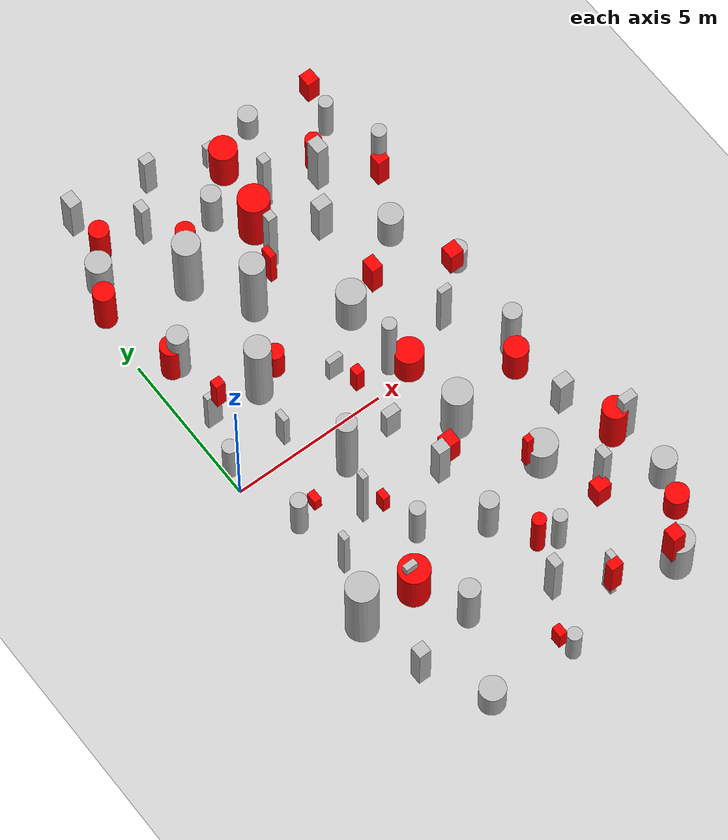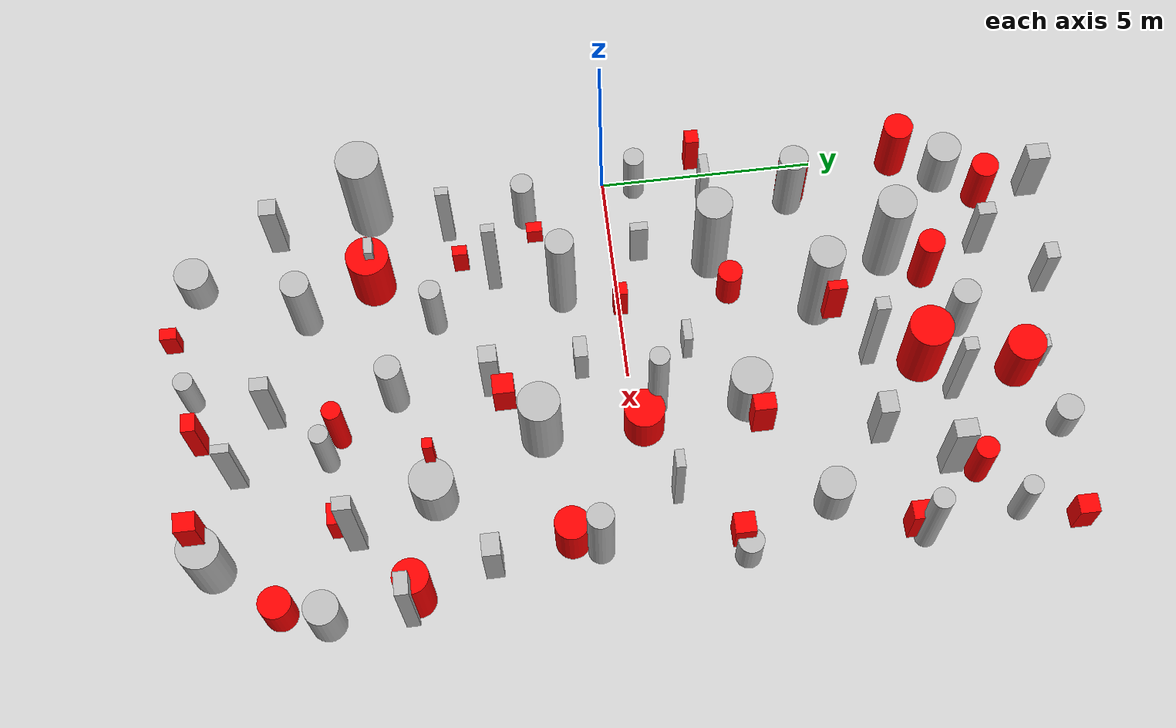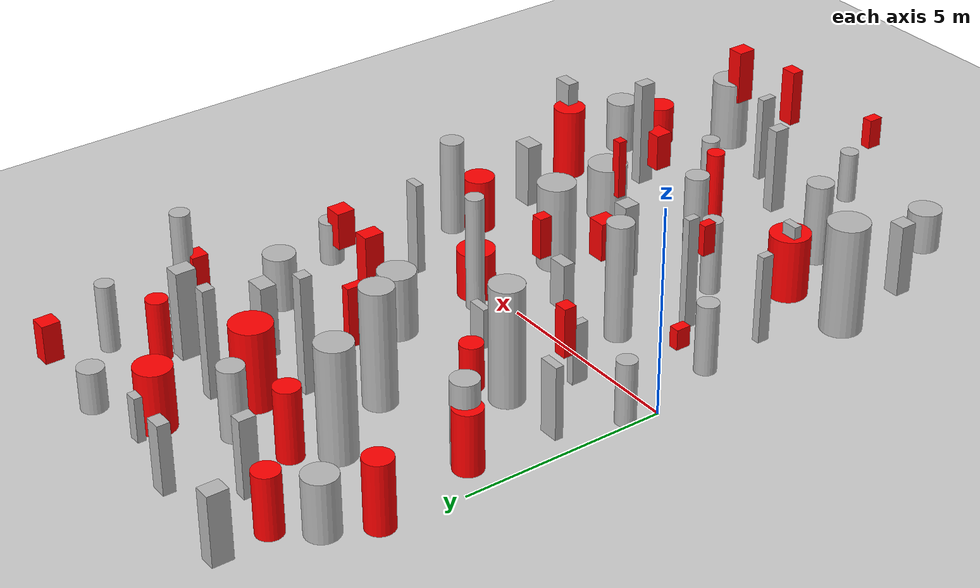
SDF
<sdf version="1.7">
 <world name="default">
  <model name="ground_plane">
   <static>1</static>
   <link name="link">
    <collision name="collision">
     <geometry><plane><normal>0 0 1</normal><size>100 100</size></plane></geometry>
     <surface>
      <contact><collide_bitmask>65535</collide_bitmask></contact>
      <friction><ode><mu>100</mu><mu2>50</mu2></ode></friction>
     </surface>
    </collision>
    <visual name="visual">
     <cast_shadows>0</cast_shadows>
     <geometry><plane><normal>0 0 1</normal><size>100 100</size></plane></geometry>
     <material>
      <script><uri>file://media/materials/scripts/gazebo.material</uri><name>Gazebo/Grey</name></script>
     </material>
    </visual>
   </link>
  </model>
  <model name="cylinder_0_0.7_0.7_2.1">
   <static>true</static>
   <pose>0.9762700785464951 4.30378732744839 1.0448831829968968 0 0 0</pose>
   <link name="link">
    <visual name="visual">
     <geometry>
      <cylinder><radius>0.3270964398016714</radius><length>2.0897663659937935</length></cylinder>
     </geometry>
    </visual>
    <collision name="collision">
     <geometry>
      <cylinder><radius>0.3270964398016714</radius><length>2.0897663659937935</length></cylinder>
     </geometry>
     <collision><collide_bitmask>0x1</collide_bitmask><collide_with>0x2</collide_with></collision>
    </collision>
   </link>
  </model>
  <model name="cylinder_1_0.6_0.6_2.9">
   <static>true</static>
   <pose>2.917882261333123 -1.2482557747461502 1.4636627605010293 0 0 0</pose>
   <link name="link">
    <visual name="visual">
     <geometry>
      <cylinder><radius>0.3150324556477333</radius><length>2.9273255210020586</length></cylinder>
     </geometry>
    </visual>
    <collision name="collision">
     <geometry>
      <cylinder><radius>0.3150324556477333</radius><length>2.9273255210020586</length></cylinder>
     </geometry>
     <collision><collide_bitmask>0x1</collide_bitmask><collide_with>0x2</collide_with></collision>
    </collision>
   </link>
  </model>
  <model name="cylinder_2_0.4_0.4_2.9">
   <static>true</static>
   <pose>5.834500761653292 0.5778983950580887 1.425596638292661 0 0 0</pose>
   <link name="link">
    <visual name="visual">
     <geometry>
      <cylinder><radius>0.2213108174593661</radius><length>2.851193276585322</length></cylinder>
     </geometry>
    </visual>
    <collision name="collision">
     <geometry>
      <cylinder><radius>0.2213108174593661</radius><length>2.851193276585322</length></cylinder>
     </geometry>
     <collision><collide_bitmask>0x1</collide_bitmask><collide_with>0x2</collide_with></collision>
    </collision>
   </link>
  </model>
  <model name="cylinder_4_0.5_0.5_2.6">
   <static>true</static>
   <pose>9.572366844655281 5.983171284334471 1.2805291762864555 0 0 0</pose>
   <link name="link">
    <visual name="visual">
     <geometry>
      <cylinder><radius>0.23548232776067998</radius><length>2.561058352572911</length></cylinder>
     </geometry>
    </visual>
    <collision name="collision">
     <geometry>
      <cylinder><radius>0.23548232776067998</radius><length>2.561058352572911</length></cylinder>
     </geometry>
     <collision><collide_bitmask>0x1</collide_bitmask><collide_with>0x2</collide_with></collision>
    </collision>
   </link>
  </model>
  <model name="cylinder_5_0.6_0.6_2.0">
   <static>true</static>
   <pose>2.798420426550477 -7.132934251819072 1.0218483217500718 0 0 0</pose>
   <link name="link">
    <visual name="visual">
     <geometry>
      <cylinder><radius>0.3243985819971571</radius><length>2.0436966435001436</length></cylinder>
     </geometry>
    </visual>
   </link>
  </model>
  <model name="cylinder_7_0.8_0.8_2.9">
   <static>true</static>
   <pose>2.352709941517542 2.2419144544484286 1.4437480785146242 0 0 0</pose>
   <link name="link">
    <visual name="visual">
     <geometry>
      <cylinder><radius>0.404546089731045</radius><length>2.8874961570292483</length></cylinder>
     </geometry>
    </visual>
   </link>
  </model>
  <model name="cylinder_12_0.6_0.6_1.1">
   <static>true</static>
   <pose>9.535221763806742 2.0969103949009202 0.5391877922543207 0 0 0</pose>
   <link name="link">
    <visual name="visual">
     <geometry>
      <cylinder><radius>0.2848420887729229</radius><length>1.0783755845086413</length></cylinder>
     </geometry>
    </visual>
   </link>
  </model>
  <model name="cylinder_16_0.8_0.8_1.0">
   <static>true</static>
   <pose>1.7302586962016626 -9.597849076250128 0.5046954761925471 0 0 0</pose>
   <link name="link">
    <visual name="visual">
     <geometry>
      <cylinder><radius>0.4033449610388691</radius><length>1.0093909523850941</length></cylinder>
     </geometry>
    </visual>
   </link>
  </model>
  <model name="cylinder_17_0.6_0.6_2.4">
   <static>true</static>
   <pose>9.054980230339702 -1.0574924276474533 1.1994792753175043 0 0 0</pose>
   <link name="link">
    <visual name="visual">
     <geometry>
      <cylinder><radius>0.2892310852565401</radius><length>2.3989585506350086</length></cylinder>
     </geometry>
    </visual>
   </link>
  </model>
  <model name="cylinder_18_0.9_0.9_2.2">
   <static>true</static>
   <pose>6.275956394049544 -2.0698851830603076 1.0812728726358587 0 0 0</pose>
   <link name="link">
    <visual name="visual">
     <geometry>
      <cylinder><radius>0.4645206085564558</radius><length>2.1625457452717174</length></cylinder>
     </geometry>
    </visual>
   </link>
  </model>
  <model name="cylinder_19_0.8_0.8_2.9">
   <static>true</static>
   <pose>3.850631801555318 4.50508559639281 1.4560836347232238 0 0 0</pose>
   <link name="link">
    <visual name="visual">
     <geometry>
      <cylinder><radius>0.3931970597688912</radius><length>2.9121672694464475</length></cylinder>
     </geometry>
    </visual>
   </link>
  </model>
  <model name="cylinder_20_0.5_0.5_1.9">
   <static>true</static>
   <pose>3.2034707498537003 -4.198447855791119 0.9287687009457661 0 0 0</pose>
   <link name="link">
    <visual name="visual">
     <geometry>
      <cylinder><radius>0.24064221926673507</radius><length>1.8575374018915323</length></cylinder>
     </geometry>
    </visual>
   </link>
  </model>
  <model name="cylinder_21_0.8_0.8_1.3">
   <static>true</static>
   <pose>9.976940131357331 -7.011033906840125 0.6624929346763748 0 0 0</pose>
   <link name="link">
    <visual name="visual">
     <geometry>
      <cylinder><radius>0.3846678692851533</radius><length>1.3249858693527496</length></cylinder>
     </geometry>
    </visual>
   </link>
  </model>
  <model name="cylinder_23_0.6_0.6_1.0">
   <static>true</static>
   <pose>7.327646518572585 9.510430100057718 0.511714084185002 0 0 0</pose>
   <link name="link">
    <visual name="visual">
     <geometry>
      <cylinder><radius>0.30799341934350916</radius><length>1.023428168370004</length></cylinder>
     </geometry>
    </visual>
   </link>
  </model>
  <model name="cylinder_25_0.8_0.8_1.3">
   <static>true</static>
   <pose>8.561625869311818 4.088288038470655 0.6646941564979127 0 0 0</pose>
   <link name="link">
    <visual name="visual">
     <geometry>
      <cylinder><radius>0.386443520449929</radius><length>1.3293883129958255</length></cylinder>
     </geometry>
    </visual>
   </link>
  </model>
  <model name="cylinder_28_0.8_0.8_1.4">
   <static>true</static>
   <pose>0.731584222174444 7.933425860806842 0.7168969843984739 0 0 0</pose>
   <link name="link">
    <visual name="visual">
     <geometry>
      <cylinder><radius>0.3989234609300303</radius><length>1.4337939687969479</length></cylinder>
     </geometry>
    </visual>
   </link>
  </model>
  <model name="cylinder_29_1.0_1.0_1.4">
   <static>true</static>
   <pose>7.453013108947907 -4.529159303687285 0.6856359443059522 0 0 0</pose>
   <link name="link">
    <visual name="visual">
     <geometry>
      <cylinder><radius>0.48583749709158336</radius><length>1.3712718886119044</length></cylinder>
     </geometry>
    </visual>
   </link>
  </model>
  <model name="cylinder_33_0.9_0.9_1.6">
   <static>true</static>
   <pose>5.984051747047834 2.608958737335822 0.7930202845077967 0 0 0</pose>
   <link name="link">
    <visual name="visual">
     <geometry>
      <cylinder><radius>0.4546830665938755</radius><length>1.5860405690155934</length></cylinder>
     </geometry>
    </visual>
   </link>
  </model>
  <model name="cylinder_34_1.0_1.0_2.7">
   <static>true</static>
   <pose>0.22637965092912005 -5.513659420505215 1.3621915174216834 0 0 0</pose>
   <link name="link">
    <visual name="visual">
     <geometry>
      <cylinder><radius>0.49187584670693907</radius><length>2.724383034843367</length></cylinder>
     </geometry>
    </visual>
   </link>
  </model>
  <model name="cylinder_35_0.4_0.4_1.7">
   <static>true</static>
   <pose>9.216693161260004 8.131109984423578 0.8331451520286419 0 0 0</pose>
   <link name="link">
    <visual name="visual">
     <geometry>
      <cylinder><radius>0.22433041699639905</radius><length>1.6662903040572838</length></cylinder>
     </geometry>
    </visual>
   </link>
  </model>
  <model name="cylinder_36_0.4_0.4_1.3">
   <static>true</static>
   <pose>4.511887284211575 -9.771450827499379 0.646946645400375 0 0 0</pose>
   <link name="link">
    <visual name="visual">
     <geometry>
      <cylinder><radius>0.22385662477602675</radius><length>1.29389329080075</length></cylinder>
     </geometry>
    </visual>
   </link>
  </model>
  <model name="cylinder_37_0.5_0.5_1.6">
   <static>true</static>
   <pose>0.2003370463650036 0.7235498940690395 0.7775960977317661 0 0 0</pose>
   <link name="link">
    <visual name="visual">
     <geometry>
      <cylinder><radius>0.23865816963989606</radius><length>1.5551921954635322</length></cylinder>
     </geometry>
    </visual>
   </link>
  </model>
  <model name="cylinder_38_0.4_0.4_1.8">
   <static>true</static>
   <pose>6.310476375371376 -6.811710731020881 0.8984342586196771 0 0 0</pose>
   <link name="link">
    <visual name="visual">
     <geometry>
      <cylinder><radius>0.2188138856070037</radius><length>1.7968685172393541</length></cylinder>
     </geometry>
    </visual>
   </link>
  </model>
  <model name="cylinder_42_0.6_0.6_1.8">
   <static>true</static>
   <pose>4.614181982549523 7.6344042466767945 0.8790568960774285 0 0 0</pose>
   <link name="link">
    <visual name="visual">
     <geometry>
      <cylinder><radius>0.31228885499627485</radius><length>1.758113792154857</length></cylinder>
     </geometry>
    </visual>
   </link>
  </model>
  <model name="cylinder_43_0.6_0.6_1.9">
   <static>true</static>
   <pose>4.975765150802662 -5.243855149219224 0.9492916486877381 0 0 0</pose>
   <link name="link">
    <visual name="visual">
     <geometry>
      <cylinder><radius>0.29134052221319584</radius><length>1.8985832973754762</length></cylinder>
     </geometry>
    </visual>
   </link>
  </model>
  <model name="cylinder_46_0.9_0.9_2.8">
   <static>true</static>
   <pose>2.7516538906158576 6.261077264949215 1.3897936564455402 0 0 0</pose>
   <link name="link">
    <visual name="visual">
     <geometry>
      <cylinder><radius>0.42936859230731256</radius><length>2.7795873128910804</length></cylinder>
     </geometry>
    </visual>
   </link>
  </model>
  <model name="cylinder_48_0.5_0.5_1.7">
   <static>true</static>
   <pose>0.6983370985416784 -1.9151276412148235 0.8650998770600098 0 0 0</pose>
   <link name="link">
    <visual name="visual">
     <geometry>
      <cylinder><radius>0.25717007448202045</radius><length>1.7301997541200196</length></cylinder>
     </geometry>
    </visual>
   </link>
  </model>
  <model name="cylinder_49_0.9_0.9_1.8">
   <static>true</static>
   <pose>8.544236147462357 -9.420949019460789 0.892568788462151 0 0 0</pose>
   <link name="link">
    <visual name="visual">
     <geometry>
      <cylinder><radius>0.46351174861399824</radius><length>1.785137576924302</length></cylinder>
     </geometry>
    </visual>
   </link>
  </model>
  <model name="box_0_0.4_0.3_1.7">
   <static>true</static>
   <pose>3.815695523130591 9.746975141479364 0.8645446259967866 0 0 0</pose>
   <link name="link">
    <visual name="visual"><geometry><box><size>0.4 0.3 1.7</size></box></geometry></visual>
   </link>
  </model>
  <model name="box_3_0.5_0.4_1.6">
   <static>true</static>
   <pose>9.122463191199198 -3.3911885479431225 0.7808594946322427 0 0 0</pose>
   <link name="link">
    <visual name="visual"><geometry><box><size>0.5 0.4 1.6</size></box></geometry></visual>
   </link>
  </model>
  <model name="box_5_0.4_0.2_2.3">
   <static>true</static>
   <pose>7.972753368165325 0.7434025589741484 1.1736532695846353 0 0 0</pose>
   <link name="link">
    <visual name="visual"><geometry><box><size>0.4 0.2 2.3</size></box></geometry></visual>
   </link>
  </model>
  <model name="box_6_0.5_0.4_1.8">
   <static>true</static>
   <pose>7.023969434300078 5.421546936303761 0.8772689326657602 0 0 0</pose>
   <link name="link">
    <visual name="visual"><geometry><box><size>0.5 0.4 1.8</size></box></geometry></visual>
   </link>
  </model>
  <model name="box_8_0.4_0.4_1.8">
   <static>true</static>
   <pose>0.6467214179464449 -7.700957007257703 0.8755493550845426 0 0 0</pose>
   <link name="link">
    <visual name="visual"><geometry><box><size>0.4 0.4 1.8</size></box></geometry></visual>
   </link>
  </model>
  <model name="box_12_0.2_0.4_2.2">
   <static>true</static>
   <pose>6.567791050071712 -8.827418822324557 1.1229267200659891 0 0 0</pose>
   <link name="link">
    <visual name="visual"><geometry><box><size>0.2 0.4 2.2</size></box></geometry></visual>
   </link>
  </model>
  <model name="box_16_0.4_0.5_1.7">
   <static>true</static>
   <pose>1.2480365202638062 9.998622940376322 0.836350655296926 0 0 0</pose>
   <link name="link">
    <visual name="visual"><geometry><box><size>0.4 0.5 1.7</size></box></geometry></visual>
   </link>
  </model>
  <model name="box_22_0.4_0.4_1.9">
   <static>true</static>
   <pose>4.916316481088979 -3.06732546911781 0.9431091384338327 0 0 0</pose>
   <link name="link">
    <visual name="visual"><geometry><box><size>0.4 0.4 1.9</size></box></geometry></visual>
   </link>
  </model>
  <model name="box_23_0.3_0.4_2.7">
   <static>true</static>
   <pose>8.251180174632044 -6.294542089488548 1.3540108435810847 0 0 0</pose>
   <link name="link">
    <visual name="visual"><geometry><box><size>0.3 0.4 2.7</size></box></geometry></visual>
   </link>
  </model>
  <model name="box_26_0.5_0.3_2.4">
   <static>true</static>
   <pose>9.985173173623767 -5.231209022415011 1.191066005473369 0 0 0</pose>
   <link name="link">
    <visual name="visual"><geometry><box><size>0.5 0.3 2.4</size></box></geometry></visual>
   </link>
  </model>
  <model name="box_28_0.2_0.3_2.2">
   <static>true</static>
   <pose>0.9291258212460001 -3.7348301979196563 1.0775940791907155 0 0 0</pose>
   <link name="link">
    <visual name="visual"><geometry><box><size>0.2 0.3 2.2</size></box></geometry></visual>
   </link>
  </model>
  <model name="box_30_0.5_0.2_1.0">
   <static>true</static>
   <pose>4.464506109105033 1.4159431969696623 0.5181416660316917 0 0 0</pose>
   <link name="link">
    <visual name="visual"><geometry><box><size>0.5 0.2 1.0</size></box></geometry></visual>
   </link>
  </model>
  <model name="box_31_0.4_0.5_2.2">
   <static>true</static>
   <pose>7.974628296723637 6.859594398046497 1.099133273781051 0 0 0</pose>
   <link name="link">
    <visual name="visual"><geometry><box><size>0.4 0.5 2.2</size></box></geometry></visual>
   </link>
  </model>
  <model name="box_32_0.3_0.4_2.2">
   <static>true</static>
   <pose>5.184814316852012 -7.960496348768085 1.1236370299125114 0 0 0</pose>
   <link name="link">
    <visual name="visual"><geometry><box><size>0.3 0.4 2.2</size></box></geometry></visual>
   </link>
  </model>
  <model name="box_33_0.5_0.3_1.2">
   <static>true</static>
   <pose>4.672418581388806 -1.0200588335684948 0.597226469354613 0 0 0</pose>
   <link name="link">
    <visual name="visual"><geometry><box><size>0.5 0.3 1.2</size></box></geometry></visual>
   </link>
  </model>
  <model name="box_35_0.5_0.2_1.8">
   <static>true</static>
   <pose>0.7252978011621849 2.27458122753273 0.9199412609170742 0 0 0</pose>
   <link name="link">
    <visual name="visual"><geometry><box><size>0.5 0.2 1.8</size></box></geometry></visual>
   </link>
  </model>
  <model name="box_36_0.3_0.3_2.9">
   <static>true</static>
   <pose>5.201484331148096 5.479809423767648 1.4358155739227114 0 0 0</pose>
   <link name="link">
    <visual name="visual"><geometry><box><size>0.3 0.3 2.9</size></box></geometry></visual>
   </link>
  </model>
  <model name="box_38_0.3_0.4_1.9">
   <static>true</static>
   <pose>2.6934883572210193 8.44727351030756 0.9686375811991286 0 0 0</pose>
   <link name="link">
    <visual name="visual"><geometry><box><size>0.3 0.4 1.9</size></box></geometry></visual>
   </link>
  </model>
  <model name="box_39_0.2_0.4_1.5">
   <static>true</static>
   <pose>2.000524343217922 0.6195940721407105 0.7742883198308734 0 0 0</pose>
   <link name="link">
    <visual name="visual"><geometry><box><size>0.2 0.4 1.5</size></box></geometry></visual>
   </link>
  </model>
  <model name="box_40_0.3_0.2_1.1">
   <static>true</static>
   <pose>5.724461195852832 9.31487798306052 0.5492064219019676 0 0 0</pose>
   <link name="link">
    <visual name="visual"><geometry><box><size>0.3 0.2 1.1</size></box></geometry></visual>
   </link>
  </model>
  <model name="box_45_0.3_0.3_2.7">
   <static>true</static>
   <pose>6.265884355617651 7.218252823575828 1.3251748287476706 0 0 0</pose>
   <link name="link">
    <visual name="visual"><geometry><box><size>0.3 0.3 2.7</size></box></geometry></visual>
   </link>
  </model>
  <model name="box_47_0.2_0.3_2.8">
   <static>true</static>
   <pose>2.3285115651441597 -2.772124970157801 1.397285272580829 0 0 0</pose>
   <link name="link">
    <visual name="visual"><geometry><box><size>0.2 0.3 2.8</size></box></geometry></visual>
   </link>
  </model>
  <model name="box_49_0.4_0.2_1.9">
   <static>true</static>
   <pose>1.9532435574010272 -5.485447714319783 0.9440074784073624 0 0 0</pose>
   <link name="link">
    <visual name="visual"><geometry><box><size>0.4 0.2 1.9</size></box></geometry></visual>
   </link>
  </model>
  <model name="dynamic_cylinder_4_0.7_0.7_1.7">
   <static>true</static>
   <pose>0.21400537389405017 6.917719763160221 0.8542814393454243 0 0 0</pose>
   <link name="link">
    <visual name="visual">
     <geometry>
      <cylinder><radius>0.3385944453714743</radius><length>1.7085628786908487</length></cylinder>
     </geometry>
     <material><ambient>1 0 0 1</ambient><diffuse>1 0 0 1</diffuse><specular>0.5 0.5 0.5 1</specular></material>
    </visual>
   </link>
   <plugin name="obstacle_motion" filename="libobstaclePathPlugin.so">
    <orientation>false</orientation>
    <loop>0</loop>
    <velocity>0.8337976086851988</velocity>
    <path>
     <waypoint>0.21400537389405017 6.917719763160221 0.8542814393454243</waypoint>
     <waypoint>-7.70718385352795 -2.0739144139536876 0.8542814393454243</waypoint>
    </path>
   </plugin>
  </model>
  <model name="dynamic_cylinder_5_0.9_0.9_1.2">
   <static>true</static>
   <pose>6.297661325660062 0.2210966656323734 0.5894975918375169 0 0 0</pose>
   <link name="link">
    <visual name="visual">
     <geometry>
      <cylinder><radius>0.4531159714554688</radius><length>1.1789951836750339</length></cylinder>
     </geometry>
     <material><ambient>1 0 0 1</ambient><diffuse>1 0 0 1</diffuse><specular>0.5 0.5 0.5 1</specular></material>
    </visual>
   </link>
   <plugin name="obstacle_motion" filename="libobstaclePathPlugin.so">
    <orientation>false</orientation>
    <loop>0</loop>
    <velocity>0.7414905329440913</velocity>
    <path>
     <waypoint>6.297661325660062 0.2210966656323734 0.5894975918375169</waypoint>
     <waypoint>0.37458115457321917 -7.934001220834432 0.5894975918375169</waypoint>
    </path>
   </plugin>
  </model>
  <model name="dynamic_cylinder_6_1.0_1.0_2.0">
   <static>true</static>
   <pose>5.452413702680756 6.637807491611564 0.997973667701636 0 0 0</pose>
   <link name="link">
    <visual name="visual">
     <geometry><cylinder><radius>0.49214008955948</radius><length>1.995947335403272</length></cylinder></geometry>
     <material><ambient>1 0 0 1</ambient><diffuse>1 0 0 1</diffuse><specular>0.5 0.5 0.5 1</specular></material>
    </visual>
   </link>
   <plugin name="obstacle_motion" filename="libobstaclePathPlugin.so">
    <orientation>false</orientation>
    <loop>0</loop>
    <velocity>0.8070301342298187</velocity>
    <path>
     <waypoint>5.452413702680756 6.637807491611564 0.997973667701636</waypoint>
     <waypoint>1.532083345849669 -2.4152492190575847 0.997973667701636</waypoint>
    </path>
   </plugin>
  </model>
  <model name="dynamic_cylinder_7_0.7_0.7_1.0">
   <static>true</static>
   <pose>9.662125916906742 -8.015224961391734 0.5091434854413361 0 0 0</pose>
   <link name="link">
    <visual name="visual">
     <geometry>
      <cylinder><radius>0.36237877207584135</radius><length>1.0182869708826723</length></cylinder>
     </geometry>
     <material><ambient>1 0 0 1</ambient><diffuse>1 0 0 1</diffuse><specular>0.5 0.5 0.5 1</specular></material>
    </visual>
   </link>
   <plugin name="obstacle_motion" filename="libobstaclePathPlugin.so">
    <orientation>false</orientation>
    <loop>0</loop>
    <velocity>0.9172747771711054</velocity>
    <path>
     <waypoint>9.662125916906742 -8.015224961391734 0.5091434854413361</waypoint>
     <waypoint>8.37827457308584 1.5977071266989977 0.5091434854413361</waypoint>
    </path>
   </plugin>
  </model>
  <model name="dynamic_cylinder_14_0.8_0.8_1.4">
   <static>true</static>
   <pose>8.780451880371793 -1.645748314403919 0.6793686942938111 0 0 0</pose>
   <link name="link">
    <visual name="visual">
     <geometry>
      <cylinder><radius>0.37946045430995556</radius><length>1.3587373885876222</length></cylinder>
     </geometry>
     <material><ambient>1 0 0 1</ambient><diffuse>1 0 0 1</diffuse><specular>0.5 0.5 0.5 1</specular></material>
    </visual>
   </link>
   <plugin name="obstacle_motion" filename="libobstaclePathPlugin.so">
    <orientation>false</orientation>
    <loop>0</loop>
    <velocity>0.6832440035333034</velocity>
    <path>
     <waypoint>8.780451880371793 -1.645748314403919 0.6793686942938111</waypoint>
     <waypoint>5.156840683199507 -6.9120256739938934 0.6793686942938111</waypoint>
    </path>
   </plugin>
  </model>
  <model name="dynamic_cylinder_15_1.0_1.0_1.6">
   <static>true</static>
   <pose>2.056826924923513 -5.548848179001951 0.7930708071076422 0 0 0</pose>
   <link name="link">
    <visual name="visual">
     <geometry>
      <cylinder><radius>0.4877034728628183</radius><length>1.5861416142152844</length></cylinder>
     </geometry>
     <material><ambient>1 0 0 1</ambient><diffuse>1 0 0 1</diffuse><specular>0.5 0.5 0.5 1</specular></material>
    </visual>
   </link>
   <plugin name="obstacle_motion" filename="libobstaclePathPlugin.so">
    <orientation>false</orientation>
    <loop>0</loop>
    <velocity>0.7007083571162734</velocity>
    <path>
     <waypoint>2.056826924923513 -5.548848179001951 0.7930708071076422</waypoint>
     <waypoint>6.065057460442063 8.545398217016967 0.7930708071076422</waypoint>
    </path>
   </plugin>
  </model>
  <model name="dynamic_cylinder_16_0.7_0.7_1.5">
   <static>true</static>
   <pose>0.7855122462073894 4.377357266246214 0.7631757451365173 0 0 0</pose>
   <link name="link">
    <visual name="visual">
     <geometry>
      <cylinder><radius>0.3483594185648371</radius><length>1.5263514902730346</length></cylinder>
     </geometry>
     <material><ambient>1 0 0 1</ambient><diffuse>1 0 0 1</diffuse><specular>0.5 0.5 0.5 1</specular></material>
    </visual>
   </link>
   <plugin name="obstacle_motion" filename="libobstaclePathPlugin.so">
    <orientation>false</orientation>
    <loop>0</loop>
    <velocity>0.8466830503100422</velocity>
    <path>
     <waypoint>0.7855122462073894 4.377357266246214 0.7631757451365173</waypoint>
     <waypoint>0.8972539509822575 -4.732949260121513 0.7631757451365173</waypoint>
    </path>
   </plugin>
  </model>
  <model name="dynamic_cylinder_17_0.9_0.9_1.5">
   <static>true</static>
   <pose>5.890897788736744 8.766211433187518 0.7617658675277468 0 0 0</pose>
   <link name="link">
    <visual name="visual">
     <geometry>
      <cylinder><radius>0.43625691961470425</radius><length>1.5235317350554936</length></cylinder>
     </geometry>
     <material><ambient>1 0 0 1</ambient><diffuse>1 0 0 1</diffuse><specular>0.5 0.5 0.5 1</specular></material>
    </visual>
   </link>
   <plugin name="obstacle_motion" filename="libobstaclePathPlugin.so">
    <orientation>false</orientation>
    <loop>0</loop>
    <velocity>0.8705349690329867</velocity>
    <path>
     <waypoint>5.890897788736744 8.766211433187518 0.7617658675277468</waypoint>
     <waypoint>1.5188812178735063 -0.6685808850023207 0.7617658675277468</waypoint>
    </path>
   </plugin>
  </model>
  <model name="dynamic_cylinder_19_0.8_0.8_1.8">
   <static>true</static>
   <pose>9.684144362698515 -5.081362810360397 0.9107967928670899 0 0 0</pose>
   <link name="link">
    <visual name="visual">
     <geometry>
      <cylinder><radius>0.39270434455919107</radius><length>1.8215935857341798</length></cylinder>
     </geometry>
     <material><ambient>1 0 0 1</ambient><diffuse>1 0 0 1</diffuse><specular>0.5 0.5 0.5 1</specular></material>
    </visual>
   </link>
   <plugin name="obstacle_motion" filename="libobstaclePathPlugin.so">
    <orientation>false</orientation>
    <loop>0</loop>
    <velocity>0.5993417638163043</velocity>
    <path>
     <waypoint>9.684144362698515 -5.081362810360397 0.9107967928670899</waypoint>
     <waypoint>2.3091507570010528 6.900263761218525 0.9107967928670899</waypoint>
    </path>
   </plugin>
  </model>
  <model name="dynamic_cylinder_20_0.6_0.6_1.5">
   <static>true</static>
   <pose>1.358653010111901 8.76867987519011 0.7601549653474703 0 0 0</pose>
   <link name="link">
    <visual name="visual">
     <geometry>
      <cylinder><radius>0.31163099009273404</radius><length>1.5203099306949406</length></cylinder>
     </geometry>
     <material><ambient>1 0 0 1</ambient><diffuse>1 0 0 1</diffuse><specular>0.5 0.5 0.5 1</specular></material>
    </visual>
   </link>
   <plugin name="obstacle_motion" filename="libobstaclePathPlugin.so">
    <orientation>false</orientation>
    <loop>0</loop>
    <velocity>0.7775714090103019</velocity>
    <path>
     <waypoint>1.358653010111901 8.76867987519011 0.7601549653474703</waypoint>
     <waypoint>-3.358276405319966 -7.374000136256518 0.7601549653474703</waypoint>
    </path>
   </plugin>
  </model>
  <model name="dynamic_cylinder_24_0.6_0.6_1.8">
   <static>true</static>
   <pose>3.287410722508117 7.098281181925255 0.8814873789001918 0 0 0</pose>
   <link name="link">
    <visual name="visual">
     <geometry>
      <cylinder><radius>0.3050103358351345</radius><length>1.7629747578003836</length></cylinder>
     </geometry>
     <material><ambient>1 0 0 1</ambient><diffuse>1 0 0 1</diffuse><specular>0.5 0.5 0.5 1</specular></material>
    </visual>
   </link>
   <plugin name="obstacle_motion" filename="libobstaclePathPlugin.so">
    <orientation>false</orientation>
    <loop>0</loop>
    <velocity>0.9338420620787471</velocity>
    <path>
     <waypoint>3.287410722508117 7.098281181925255 0.8814873789001918</waypoint>
     <waypoint>-0.45447946112519944 0.07911881899287465 0.8814873789001918</waypoint>
    </path>
   </plugin>
  </model>
  <model name="dynamic_cylinder_25_0.4_0.4_1.8">
   <static>true</static>
   <pose>5.7794554687079405 -6.521257688632427 0.8768919061593095 0 0 0</pose>
   <link name="link">
    <visual name="visual">
     <geometry>
      <cylinder><radius>0.2152083500159489</radius><length>1.753783812318619</length></cylinder>
     </geometry>
     <material><ambient>1 0 0 1</ambient><diffuse>1 0 0 1</diffuse><specular>0.5 0.5 0.5 1</specular></material>
    </visual>
   </link>
   <plugin name="obstacle_motion" filename="libobstaclePathPlugin.so">
    <orientation>false</orientation>
    <loop>0</loop>
    <velocity>0.772105574804078</velocity>
    <path>
     <waypoint>5.7794554687079405 -6.521257688632427 0.8768919061593095</waypoint>
     <waypoint>3.5525913510006077 -1.829889458110694 0.8768919061593095</waypoint>
    </path>
   </plugin>
  </model>
  <model name="dynamic_cylinder_27_0.6_0.6_1.1">
   <static>true</static>
   <pose>3.186537886977817 2.5733640891092513 0.5663459130917383 0 0 0</pose>
   <link name="link">
    <visual name="visual">
     <geometry>
      <cylinder><radius>0.27818766821510793</radius><length>1.1326918261834766</length></cylinder>
     </geometry>
     <material><ambient>1 0 0 1</ambient><diffuse>1 0 0 1</diffuse><specular>0.5 0.5 0.5 1</specular></material>
    </visual>
   </link>
   <plugin name="obstacle_motion" filename="libobstaclePathPlugin.so">
    <orientation>false</orientation>
    <loop>0</loop>
    <velocity>0.5393587072344521</velocity>
    <path>
     <waypoint>3.186537886977817 2.5733640891092513 0.5663459130917383</waypoint>
     <waypoint>8.323761386493018 -7.227517745884575 0.5663459130917383</waypoint>
    </path>
   </plugin>
  </model>
  <model name="dynamic_cylinder_28_0.5_0.5_1.5">
   <static>true</static>
   <pose>8.211885138993168 7.400087123730174 0.7507621885254498 0 0 0</pose>
   <link name="link">
    <visual name="visual">
     <geometry>
      <cylinder><radius>0.2583684080865403</radius><length>1.5015243770508997</length></cylinder>
     </geometry>
     <material><ambient>1 0 0 1</ambient><diffuse>1 0 0 1</diffuse><specular>0.5 0.5 0.5 1</specular></material>
    </visual>
   </link>
   <plugin name="obstacle_motion" filename="libobstaclePathPlugin.so">
    <orientation>false</orientation>
    <loop>0</loop>
    <velocity>0.8409769660280078</velocity>
    <path>
     <waypoint>8.211885138993168 7.400087123730174 0.7507621885254498</waypoint>
     <waypoint>-2.9045968465146537 -9.488550507513043 0.7507621885254498</waypoint>
    </path>
   </plugin>
  </model>
  <model name="dynamic_box_0_0.4_0.4_1.2">
   <static>true</static>
   <pose>9.42103710834552 5.732841602385459 0.8806676692077008 0 0 0</pose>
   <link name="link">
    <visual name="visual">
     <geometry><box><size>0.4084971501281994 0.40116683468631265 1.2360120647732702</size></box></geometry>
     <material><ambient>1 0 0 1</ambient><diffuse>1 0 0 1</diffuse><specular>0.5 0.5 0.5 1</specular></material>
    </visual>
   </link>
   <plugin name="obstacle_motion" filename="libobstaclePathPlugin.so">
    <orientation>false</orientation>
    <loop>0</loop>
    <velocity>0.7507523104014125</velocity>
    <path>
     <waypoint>9.42103710834552 5.732841602385459 0.8806676692077008</waypoint>
     <waypoint>-3.9271907396492995 -7.442138335853315 1.4497788702426972</waypoint>
    </path>
   </plugin>
  </model>
  <model name="dynamic_box_1_0.3_0.4_0.5">
   <static>true</static>
   <pose>1.373606283478308 -1.7382147720256107 0.599659964622127 0 0 0</pose>
   <link name="link">
    <visual name="visual">
     <geometry><box><size>0.2530435267666224 0.36498977423415135 0.5130808387106492</size></box></geometry>
     <material><ambient>1 0 0 1</ambient><diffuse>1 0 0 1</diffuse><specular>0.5 0.5 0.5 1</specular></material>
    </visual>
   </link>
   <plugin name="obstacle_motion" filename="libobstaclePathPlugin.so">
    <orientation>false</orientation>
    <loop>0</loop>
    <velocity>0.663339712981367</velocity>
    <path>
     <waypoint>1.373606283478308 -1.7382147720256107 0.599659964622127</waypoint>
     <waypoint>6.5938005274865255 -9.611868846224755 0.8690028077160052</waypoint>
    </path>
   </plugin>
  </model>
  <model name="dynamic_box_4_0.5_0.5_1.0">
   <static>true</static>
   <pose>5.414341581890502 -2.80681251233426 0.8554692496256865 0 0 0</pose>
   <link name="link">
    <visual name="visual">
     <geometry><box><size>0.4665161148316163 0.4806008994625395 0.9731842016106895</size></box></geometry>
     <material><ambient>1 0 0 1</ambient><diffuse>1 0 0 1</diffuse><specular>0.5 0.5 0.5 1</specular></material>
    </visual>
   </link>
   <plugin name="obstacle_motion" filename="libobstaclePathPlugin.so">
    <orientation>false</orientation>
    <loop>0</loop>
    <velocity>0.5312182331577227</velocity>
    <path>
     <waypoint>5.414341581890502 -2.80681251233426 0.8554692496256865</waypoint>
     <waypoint>-9.276237230640106 -3.263452051214564 1.5639439480479642</waypoint>
    </path>
   </plugin>
  </model>
  <model name="dynamic_box_9_0.3_0.3_1.2">
   <static>true</static>
   <pose>0.7285261849534859 1.9442001830950986 2.492408064485497 0 0 0</pose>
   <link name="link">
    <visual name="visual">
     <geometry><box><size>0.31734366568543004 0.300503545662104 1.1694322765117091</size></box></geometry>
     <material><ambient>1 0 0 1</ambient><diffuse>1 0 0 1</diffuse><specular>0.5 0.5 0.5 1</specular></material>
    </visual>
   </link>
   <plugin name="obstacle_motion" filename="libobstaclePathPlugin.so">
    <orientation>false</orientation>
    <loop>0</loop>
    <velocity>0.9638152427706254</velocity>
    <path>
     <waypoint>0.7285261849534859 1.9442001830950986 2.492408064485497</waypoint>
     <waypoint>-3.470358788563363 6.389981041194854 1.675408245896195</waypoint>
    </path>
   </plugin>
  </model>
  <model name="dynamic_box_10_0.2_0.2_1.5">
   <static>true</static>
   <pose>6.9577646844110035 -4.492943657493176 1.4680818598592402 0 0 0</pose>
   <link name="link">
    <visual name="visual">
     <geometry><box><size>0.2370235011265579 0.22253525314709327 1.4979277469914845</size></box></geometry>
     <material><ambient>1 0 0 1</ambient><diffuse>1 0 0 1</diffuse><specular>0.5 0.5 0.5 1</specular></material>
    </visual>
   </link>
   <plugin name="obstacle_motion" filename="libobstaclePathPlugin.so">
    <orientation>false</orientation>
    <loop>0</loop>
    <velocity>0.7533941311370116</velocity>
    <path>
     <waypoint>6.9577646844110035 -4.492943657493176 1.4680818598592402</waypoint>
     <waypoint>0.46856297875437747 -1.7814346043683322 2.3618448791167888</waypoint>
    </path>
   </plugin>
  </model>
  <model name="dynamic_box_11_0.3_0.4_0.7">
   <static>true</static>
   <pose>3.8925746645530346 -9.810389410348437 2.096819241193511 0 0 0</pose>
   <link name="link">
    <visual name="visual">
     <geometry><box><size>0.26086329061966235 0.36135990932394046 0.7427644107658684</size></box></geometry>
     <material><ambient>1 0 0 1</ambient><diffuse>1 0 0 1</diffuse><specular>0.5 0.5 0.5 1</specular></material>
    </visual>
   </link>
   <plugin name="obstacle_motion" filename="libobstaclePathPlugin.so">
    <orientation>false</orientation>
    <loop>0</loop>
    <velocity>0.6146978184950871</velocity>
    <path>
     <waypoint>3.8925746645530346 -9.810389410348437 2.096819241193511</waypoint>
     <waypoint>2.191677585656267 1.109905233812265 1.5362784013090343</waypoint>
    </path>
   </plugin>
  </model>
  <model name="dynamic_box_12_0.4_0.5_1.2">
   <static>true</static>
   <pose>6.8624819752445205 2.7172605698786327 1.5647983678861157 0 0 0</pose>
   <link name="link">
    <visual name="visual">
     <geometry><box><size>0.37657356595779823 0.485239249129026 1.244126844007373</size></box></geometry>
     <material><ambient>1 0 0 1</ambient><diffuse>1 0 0 1</diffuse><specular>0.5 0.5 0.5 1</specular></material>
    </visual>
   </link>
   <plugin name="obstacle_motion" filename="libobstaclePathPlugin.so">
    <orientation>false</orientation>
    <loop>0</loop>
    <velocity>0.8490108988324302</velocity>
    <path>
     <waypoint>6.8624819752445205 2.7172605698786327 1.5647983678861157</waypoint>
     <waypoint>-5.0666191738947886 7.56761333298245 1.5678372602889243</waypoint>
    </path>
   </plugin>
  </model>
  <model name="dynamic_box_13_0.4_0.5_1.4">
   <static>true</static>
   <pose>8.271560590751353 -9.485145635090895 2.0099045125521218 0 0 0</pose>
   <link name="link">
    <visual name="visual">
     <geometry><box><size>0.41770944624929274 0.46342899888587386 1.3867779108934797</size></box></geometry>
     <material><ambient>1 0 0 1</ambient><diffuse>1 0 0 1</diffuse><specular>0.5 0.5 0.5 1</specular></material>
    </visual>
   </link>
   <plugin name="obstacle_motion" filename="libobstaclePathPlugin.so">
    <orientation>false</orientation>
    <loop>0</loop>
    <velocity>0.5702653970098273</velocity>
    <path>
     <waypoint>8.271560590751353 -9.485145635090895 2.0099045125521218</waypoint>
     <waypoint>-9.256419335562558 -3.1162707644523335 1.227419065662896</waypoint>
    </path>
   </plugin>
  </model>
  <model name="dynamic_box_14_0.4_0.5_1.0">
   <static>true</static>
   <pose>9.559105720986537 9.414024132572983 0.5245703830108006 0 0 0</pose>
   <link name="link">
    <visual name="visual">
     <geometry><box><size>0.4211289311974449 0.45008275162188965 0.9630943680866544</size></box></geometry>
     <material><ambient>1 0 0 1</ambient><diffuse>1 0 0 1</diffuse><specular>0.5 0.5 0.5 1</specular></material>
    </visual>
   </link>
   <plugin name="obstacle_motion" filename="libobstaclePathPlugin.so">
    <orientation>false</orientation>
    <loop>0</loop>
    <velocity>0.8874100716761621</velocity>
    <path>
     <waypoint>9.559105720986537 9.414024132572983 0.5245703830108006</waypoint>
     <waypoint>-1.785865975527921 9.969726511929643 1.186498634699386</waypoint>
    </path>
   </plugin>
  </model>
  <model name="dynamic_box_16_0.2_0.3_0.8">
   <static>true</static>
   <pose>2.558456562346711 -3.437800377987024 1.9465736094540858 0 0 0</pose>
   <link name="link">
    <visual name="visual">
     <geometry><box><size>0.2310953051733298 0.32751613763558485 0.7696474951189869</size></box></geometry>
     <material><ambient>1 0 0 1</ambient><diffuse>1 0 0 1</diffuse><specular>0.5 0.5 0.5 1</specular></material>
    </visual>
   </link>
   <plugin name="obstacle_motion" filename="libobstaclePathPlugin.so">
    <orientation>false</orientation>
    <loop>0</loop>
    <velocity>0.5378542502736708</velocity>
    <path>
     <waypoint>2.558456562346711 -3.437800377987024 1.9465736094540858</waypoint>
     <waypoint>-9.915253364551994 -0.8856896341425582 2.170527046193845</waypoint>
    </path>
   </plugin>
  </model>
  <model name="dynamic_box_17_0.4_0.3_1.4">
   <static>true</static>
   <pose>6.220744854414818 -9.312375674425503 2.278021922072138 0 0 0</pose>
   <link name="link">
    <visual name="visual">
     <geometry><box><size>0.40125901740970826 0.3011321272046729 1.4143082541924665</size></box></geometry>
     <material><ambient>1 0 0 1</ambient><diffuse>1 0 0 1</diffuse><specular>0.5 0.5 0.5 1</specular></material>
    </visual>
   </link>
   <plugin name="obstacle_motion" filename="libobstaclePathPlugin.so">
    <orientation>false</orientation>
    <loop>0</loop>
    <velocity>0.7617472479305889</velocity>
    <path>
     <waypoint>6.220744854414818 -9.312375674425503 2.278021922072138</waypoint>
     <waypoint>6.7437150431412185 6.467588710552338 2.3650208168726414</waypoint>
    </path>
   </plugin>
  </model>
  <model name="dynamic_box_19_0.5_0.4_0.9">
   <static>true</static>
   <pose>7.985143159606771 -6.562563944772213 0.9221859743315751 0 0 0</pose>
   <link name="link">
    <visual name="visual">
     <geometry><box><size>0.48475830639792444 0.4386553037642415 0.9425003308825433</size></box></geometry>
     <material><ambient>1 0 0 1</ambient><diffuse>1 0 0 1</diffuse><specular>0.5 0.5 0.5 1</specular></material>
    </visual>
   </link>
   <plugin name="obstacle_motion" filename="libobstaclePathPlugin.so">
    <orientation>false</orientation>
    <loop>0</loop>
    <velocity>0.8110413289806009</velocity>
    <path>
     <waypoint>7.985143159606771 -6.562563944772213 0.9221859743315751</waypoint>
     <waypoint>-8.216222437209183 -0.9668778000891578 1.3371470805537191</waypoint>
    </path>
   </plugin>
  </model>
  <model name="dynamic_box_21_0.3_0.3_1.0">
   <static>true</static>
   <pose>4.190408162788486 -0.06541744674206029 2.402395697469707 0 0 0</pose>
   <link name="link">
    <visual name="visual">
     <geometry><box><size>0.29029176622488706 0.30794555372527216 0.9968702464984072</size></box></geometry>
     <material><ambient>1 0 0 1</ambient><diffuse>1 0 0 1</diffuse><specular>0.5 0.5 0.5 1</specular></material>
    </visual>
   </link>
   <plugin name="obstacle_motion" filename="libobstaclePathPlugin.so">
    <orientation>false</orientation>
    <loop>0</loop>
    <velocity>0.550463289818544</velocity>
    <path>
     <waypoint>4.190408162788486 -0.06541744674206029 2.402395697469707</waypoint>
     <waypoint>-8.08984742825884 0.362207740525168 2.407655705315584</waypoint>
    </path>
   </plugin>
  </model>
  <model name="dynamic_box_23_0.5_0.5_0.9">
   <static>true</static>
   <pose>9.245443446353676 1.9808672760774275 1.0013385269188082 0 0 0</pose>
   <link name="link">
    <visual name="visual">
     <geometry><box><size>0.45996358670013154 0.4615299589993187 0.9408899967383837</size></box></geometry>
     <material><ambient>1 0 0 1</ambient><diffuse>1 0 0 1</diffuse><specular>0.5 0.5 0.5 1</specular></material>
    </visual>
   </link>
   <plugin name="obstacle_motion" filename="libobstaclePathPlugin.so">
    <orientation>false</orientation>
    <loop>0</loop>
    <velocity>0.8326855890372049</velocity>
    <path>
     <waypoint>9.245443446353676 1.9808672760774275 1.0013385269188082</waypoint>
     <waypoint>-4.75810225988006 5.825322176627854 1.6591067142531821</waypoint>
    </path>
   </plugin>
  </model>
  <model name="dynamic_box_26_0.2_0.4_1.5">
   <static>true</static>
   <pose>4.54475844901677 4.636098265112004 1.9274453888489673 0 0 0</pose>
   <link name="link">
    <visual name="visual">
     <geometry><box><size>0.21624689394986982 0.4183197756210159 1.4534944101540985</size></box></geometry>
     <material><ambient>1 0 0 1</ambient><diffuse>1 0 0 1</diffuse><specular>0.5 0.5 0.5 1</specular></material>
    </visual>
   </link>
   <plugin name="obstacle_motion" filename="libobstaclePathPlugin.so">
    <orientation>false</orientation>
    <loop>0</loop>
    <velocity>0.8647973155917649</velocity>
    <path>
     <waypoint>4.54475844901677 4.636098265112004 1.9274453888489673</waypoint>
     <waypoint>-1.2821719334695132 9.628423416467733 1.339123036502933</waypoint>
    </path>
   </plugin>
  </model>
 </world>
</sdf>
